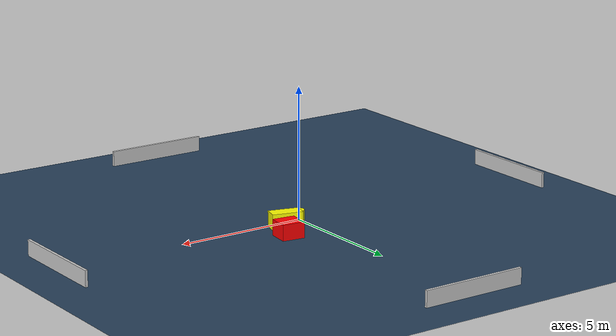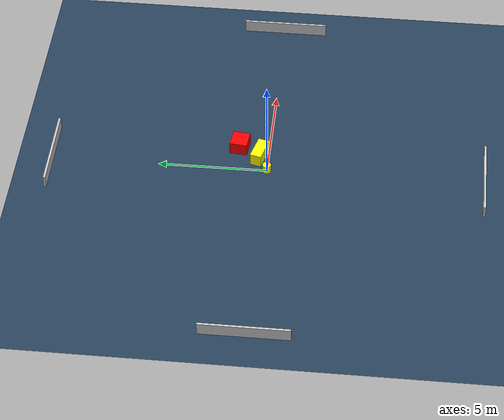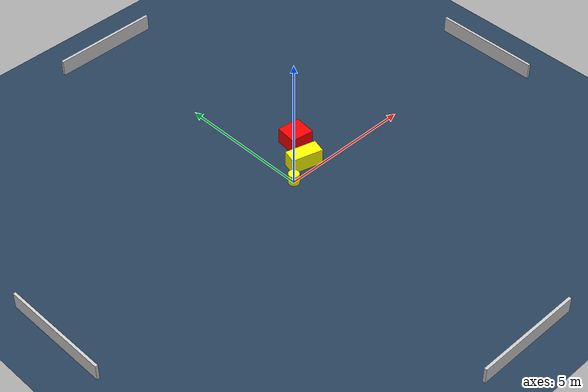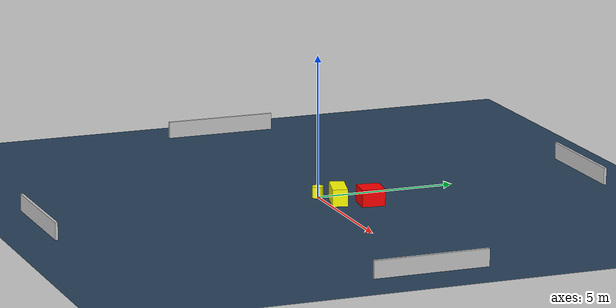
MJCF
<?xml version="1.0" ?>
<mujoco model="generated_environment">
  <option timestep="0.01" integrator="RK4" cone="elliptic"/>
  <default>
    <geom density="1"/>
  </default>
  <asset>
    <texture builtin="gradient" height="3072" name="skybox" rgb1="0.3 0.5 0.7" rgb2="0 0 0" type="skybox" width="512"/>
    <texture builtin="checker" height="300" name="groundplane" rgb1="0.2 0.3 0.4" rgb2="0.1 0.2 0.3" type="2d" width="300"/>
    <material name="groundplane" reflectance="0.2" texrepeat="5 5" texture="groundplane"/>
  </asset>
  <worldbody>
    <light dir="0 0 -1" directional="true" pos="0 0 1.5"/>
    <geom condim="3" friction="0.5 0.005 0.001" material="groundplane" name="floor" pos="0 0 0" size="0 0 0.05" type="plane"/>
    <body name="walls">
      <geom name="wall_1" condim="4" pos="-10.0 0.0 0.3" rgba="0.800000011920929 0.800000011920929 0.800000011920929 1.0" size="0.05 2.0 0.3" type="box"/>
      <geom name="wall_2" condim="4" pos="10.0 0.0 0.3" rgba="0.800000011920929 0.800000011920929 0.800000011920929 1.0" size="0.05 2.0 0.3" type="box"/>
      <geom name="wall_3" condim="4" pos="0.0 -10.0 0.3" rgba="0.800000011920929 0.800000011920929 0.800000011920929 1.0" size="2.0 0.05 0.3" type="box"/>
      <geom name="wall_4" condim="4" pos="0.0 10.0 0.3" rgba="0.800000011920929 0.800000011920929 0.800000011920929 1.0" size="2.0 0.05 0.3" type="box"/>
    </body>
    <body name="robot">
      <joint name="joint_x" type="slide" pos="0 0 0" axis="1 0 0"/>
      <joint name="joint_y" type="slide" pos="0 0 0" axis="0 1 0"/>
      <geom name="robot" type="cylinder" pos="0.0 0.0 0.2" size="0.2 0.2 0.0" mass="5.0" friction="1.0 0.005 0.0001" condim="4" rgba="1.0 1.0 0.0 1.0"/>
    </body>
    <body name="obstacle_1_movable">
      <geom name="obstacle_1_movable" condim="4" pos="0.8809684677545723 0.410145130717233 0.3" euler="0 0 344.8919746029271" friction="0.0 0.005 0.001" rgba="1.0 1.0 0.0 1.0" size="0.584322559952353 0.26534821988385116 0.3" type="box" mass="0.1"/>
      <joint type="free"/>
    </body>
    <body name="obstacle_2_static">
      <geom name="obstacle_2_static" condim="4" pos="1.426575495238677 1.38386201987956 0.3" euler="0 0 83.34706137808264" friction="0.0 0.005 0.001" rgba="1.0 0.0 0.0 1.0" size="0.40536635472260485 0.42848835507588223 0.3" type="box"/>
    </body>
  </worldbody>
  <actuator>
    <motor name="actuator_x" joint="joint_x" gear="1" ctrlrange="-1 1"/>
    <motor name="actuator_y" joint="joint_y" gear="1" ctrlrange="-1 1"/>
  </actuator>
</mujoco>
